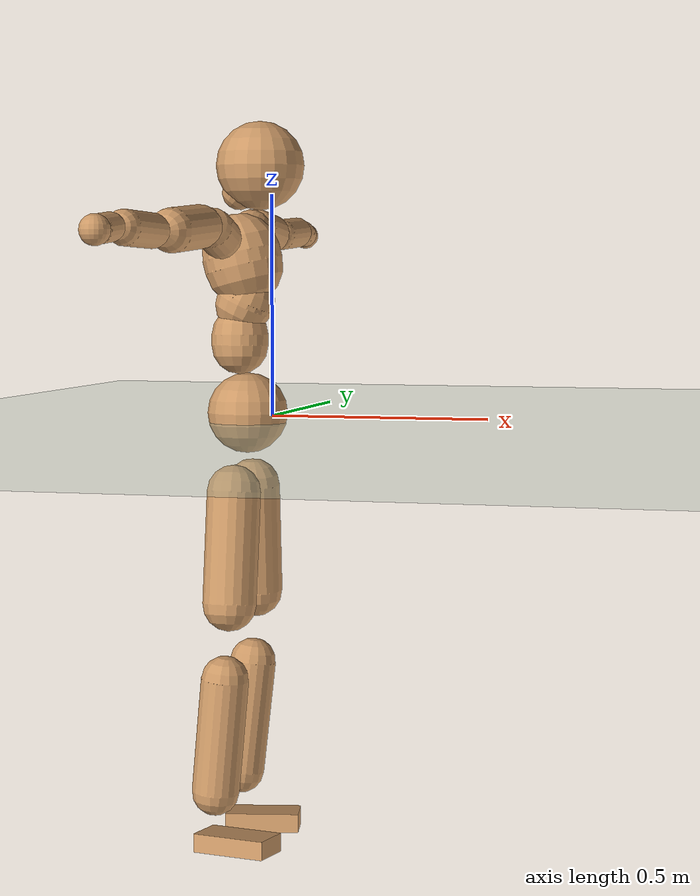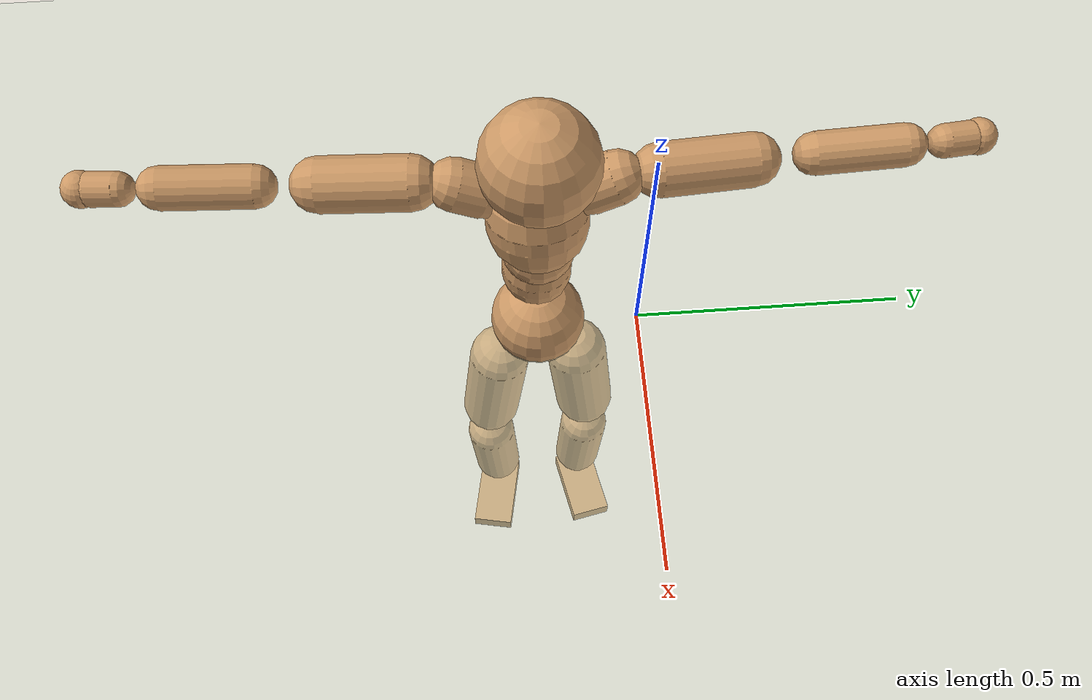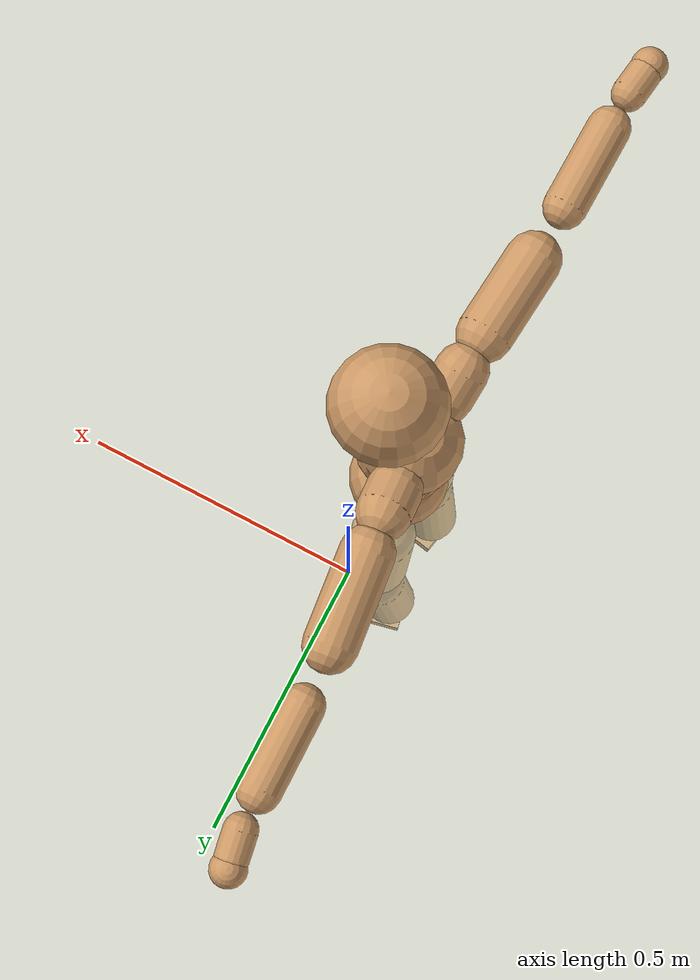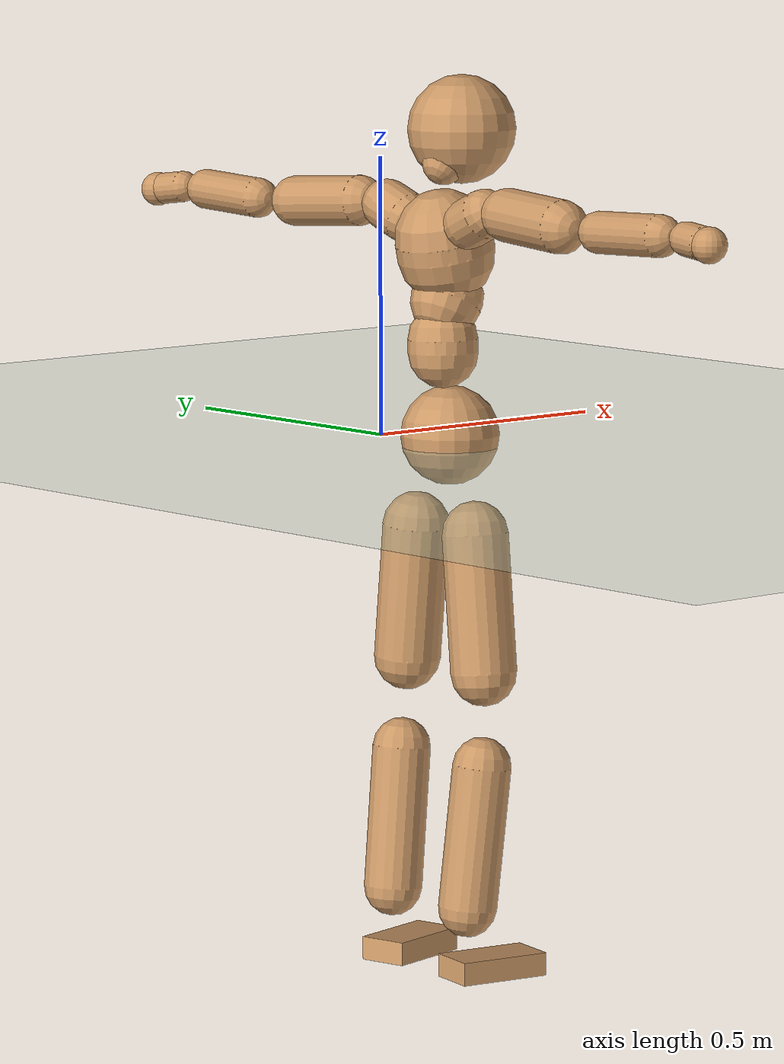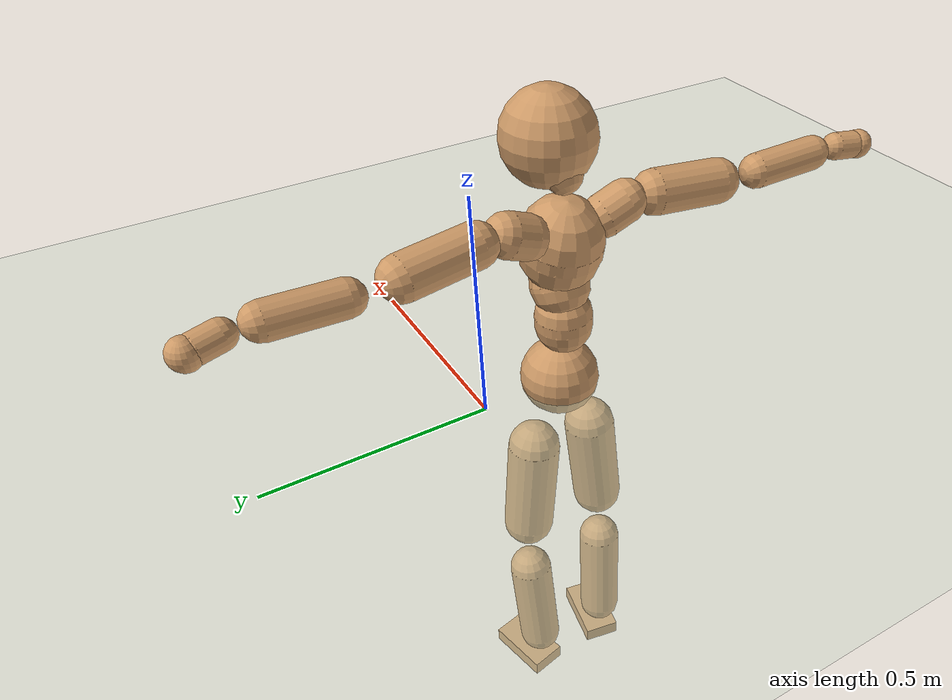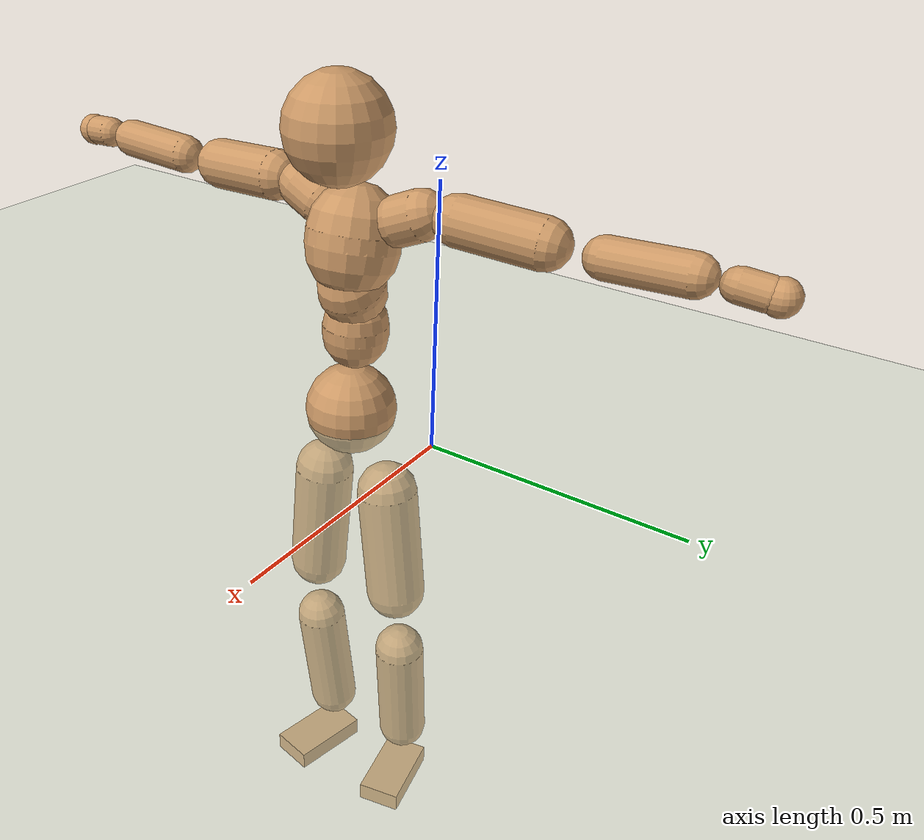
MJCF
<mujoco model="humanoid">
  <compiler coordinate="local" angle="radian"/>
  <default>
    <joint damping="0.0" armature="0.01" stiffness="0.0" limited="true"/>
    <geom conaffinity="1" condim="3" contype="7" margin="0.001" rgba="0.8 0.6 .4 1"/>
  </default>
  <asset>
    <texture type="skybox" builtin="gradient" rgb1=".4 .5 .6" rgb2="0 0 0" width="100" height="100"/>
    <texture builtin="flat" height="1278" mark="cross" markrgb="1 1 1" name="texgeom" random="0.01" rgb1="0.8 0.6 0.4" rgb2="0.8 0.6 0.4" type="cube" width="127"/>
    <texture builtin="checker" height="100" name="texplane" rgb1="0 0 0" rgb2="0.8 0.8 0.8" type="2d" width="100"/>
    <material name="MatPlane" reflectance="0.5" shininess="1" specular="1" texrepeat="60 60" texture="texplane"/>
    <material name="geom" texture="texgeom" texuniform="true"/>
  </asset>
  <worldbody>
    <light cutoff="100" diffuse="1 1 1" dir="-0 0 -1.3" directional="true" exponent="1" pos="0 0 1.3" specular=".1 .1 .1"/>
    <geom conaffinity="1" condim="3" name="floor" pos="0 0 0" rgba="0.8 0.9 0.8 1" size="100 100 .2" type="plane" material="MatPlane"/>
    <body name="Pelvis" pos="-0.001 -0.1881 0.0194">
      <freejoint name="Pelvis"/>
      <geom type="sphere" contype="1" conaffinity="1" density="500" size="0.0882" pos="0.0000 0.0000 0.0000" name="Pelvis"/>
      <body name="L_Hip" pos="-0.0118 0.0697 -0.088">
        <joint name="L_Hip_x" type="hinge" pos="0 0 0" axis="1 0 0" stiffness="800" damping="80" armature="0.02" range="-180.0000 180.0000"/>
        <joint name="L_Hip_y" type="hinge" pos="0 0 0" axis="0 1 0" stiffness="800" damping="80" armature="0.02" range="-180.0000 180.0000"/>
        <joint name="L_Hip_z" type="hinge" pos="0 0 0" axis="0 0 1" stiffness="800" damping="80" armature="0.02" range="-180.0000 180.0000"/>
        <geom type="capsule" contype="1" conaffinity="1" density="500" fromto="-0.0003 0.0076 -0.0800 -0.0013 0.0305 -0.3200" size="0.0599" name="L_Hip"/>
        <body name="L_Knee" pos="-0.0016 0.0381 -0.4">
          <joint name="L_Knee_x" type="hinge" pos="0 0 0" axis="1 0 0" stiffness="800" damping="80" armature="0.02" range="-180.0000 180.0000"/>
          <joint name="L_Knee_y" type="hinge" pos="0 0 0" axis="0 1 0" stiffness="800" damping="80" armature="0.02" range="-180.0000 180.0000"/>
          <joint name="L_Knee_z" type="hinge" pos="0 0 0" axis="0 0 1" stiffness="800" damping="80" armature="0.02" range="-180.0000 180.0000"/>
          <geom type="capsule" contype="1" conaffinity="1" density="500" fromto="-0.0089 -0.0024 -0.0841 -0.0355 -0.0094 -0.3366" size="0.052" name="L_Knee"/>
          <body name="L_Ankle" pos="-0.0444 -0.0118 -0.4207">
            <joint name="L_Ankle_x" type="hinge" pos="0 0 0" axis="1 0 0" stiffness="800" damping="80" armature="0.02" range="-180.0000 180.0000"/>
            <joint name="L_Ankle_y" type="hinge" pos="0 0 0" axis="0 1 0" stiffness="800" damping="80" armature="0.02" range="-180.0000 180.0000"/>
            <joint name="L_Ankle_z" type="hinge" pos="0 0 0" axis="0 0 1" stiffness="800" damping="80" armature="0.02" range="-180.0000 180.0000"/>
            <geom type="box" contype="1" conaffinity="1" density="500" pos="0.0586 0.0123 -0.0293" size="0.0826 0.0446 0.0209" quat="0.9946 0.0000 0.0000 0.1037" name="L_Ankle"/>
            <body name="L_Toe" pos="0.1172 0.0247 -0.0587">
              <joint name="L_Toe_x" type="hinge" pos="0 0 0" axis="1 0 0" stiffness="500" damping="50" armature="0.02" range="-180.0000 180.0000"/>
              <joint name="L_Toe_y" type="hinge" pos="0 0 0" axis="0 1 0" stiffness="500" damping="50" armature="0.02" range="-180.0000 180.0000"/>
              <joint name="L_Toe_z" type="hinge" pos="0 0 0" axis="0 0 1" stiffness="500" damping="50" armature="0.02" range="-180.0000 180.0000"/>
              <geom type="box" contype="1" conaffinity="1" density="500" pos="0.0000 0.0000 0.0293" size="0.0009 0.0022 0.001" quat="0.9939 0.0000 0.0000 0.1099" name="L_Toe"/>
            </body>
          </body>
        </body>
      </body>
      <body name="R_Hip" pos="-0.0076 -0.0678 -0.0867">
        <joint name="R_Hip_x" type="hinge" pos="0 0 0" axis="1 0 0" stiffness="800" damping="80" armature="0.02" range="-180.0000 180.0000"/>
        <joint name="R_Hip_y" type="hinge" pos="0 0 0" axis="0 1 0" stiffness="800" damping="80" armature="0.02" range="-180.0000 180.0000"/>
        <joint name="R_Hip_z" type="hinge" pos="0 0 0" axis="0 0 1" stiffness="800" damping="80" armature="0.02" range="-180.0000 180.0000"/>
        <geom type="capsule" contype="1" conaffinity="1" density="500" fromto="-0.0009 -0.0088 -0.0814 -0.0035 -0.0353 -0.3255" size="0.0591" name="R_Hip"/>
        <body name="R_Knee" pos="-0.0044 -0.0441 -0.4069">
          <joint name="R_Knee_x" type="hinge" pos="0 0 0" axis="1 0 0" stiffness="800" damping="80" armature="0.02" range="-180.0000 180.0000"/>
          <joint name="R_Knee_y" type="hinge" pos="0 0 0" axis="0 1 0" stiffness="800" damping="80" armature="0.02" range="-180.0000 180.0000"/>
          <joint name="R_Knee_z" type="hinge" pos="0 0 0" axis="0 0 1" stiffness="800" damping="80" armature="0.02" range="-180.0000 180.0000"/>
          <geom type="capsule" contype="1" conaffinity="1" density="500" fromto="-0.0084 0.0030 -0.0843 -0.0338 0.0121 -0.3372" size="0.0522" name="R_Knee"/>
          <body name="R_Ankle" pos="-0.0422 0.0152 -0.4215">
            <joint name="R_Ankle_x" type="hinge" pos="0 0 0" axis="1 0 0" stiffness="800" damping="80" armature="0.02" range="-180.0000 180.0000"/>
            <joint name="R_Ankle_y" type="hinge" pos="0 0 0" axis="0 1 0" stiffness="800" damping="80" armature="0.02" range="-180.0000 180.0000"/>
            <joint name="R_Ankle_z" type="hinge" pos="0 0 0" axis="0 0 1" stiffness="800" damping="80" armature="0.02" range="-180.0000 180.0000"/>
            <geom type="box" contype="1" conaffinity="1" density="500" pos="0.0603 -0.0116 -0.0250" size="0.0845 0.0455 0.0206" quat="0.9955 0.0000 0.0000 -0.0947" name="R_Ankle"/>
            <body name="R_Toe" pos="0.1206 -0.0232 -0.0501">
              <joint name="R_Toe_x" type="hinge" pos="0 0 0" axis="1 0 0" stiffness="500" damping="50" armature="0.02" range="-180.0000 180.0000"/>
              <joint name="R_Toe_y" type="hinge" pos="0 0 0" axis="0 1 0" stiffness="500" damping="50" armature="0.02" range="-180.0000 180.0000"/>
              <joint name="R_Toe_z" type="hinge" pos="0 0 0" axis="0 0 1" stiffness="500" damping="50" armature="0.02" range="-180.0000 180.0000"/>
              <geom type="box" contype="1" conaffinity="1" density="500" pos="0.0000 0.0000 0.0268" size="0.0008 0.0022 0.0011" quat="0.9964 0.0000 0.0000 -0.0853" name="R_Toe"/>
            </body>
          </body>
        </body>
      </body>
      <body name="Torso" pos="-0.017 -0.002 0.0999">
        <joint name="Torso_x" type="hinge" pos="0 0 0" axis="1 0 0" stiffness="1000" damping="100" armature="0.02" range="-180.0000 180.0000"/>
        <joint name="Torso_y" type="hinge" pos="0 0 0" axis="0 1 0" stiffness="1000" damping="100" armature="0.02" range="-180.0000 180.0000"/>
        <joint name="Torso_z" type="hinge" pos="0 0 0" axis="0 0 1" stiffness="1000" damping="100" armature="0.02" range="-180.0000 180.0000"/>
        <geom type="capsule" contype="1" conaffinity="1" density="500" fromto="-0.0001 0.0019 0.0713 -0.0001 0.0013 0.0475" size="0.0624" name="Torso"/>
        <body name="Spine" pos="-0.0002 0.0032 0.1189">
          <joint name="Spine_x" type="hinge" pos="0 0 0" axis="1 0 0" stiffness="1000" damping="100" armature="0.02" range="-180.0000 180.0000"/>
          <joint name="Spine_y" type="hinge" pos="0 0 0" axis="0 1 0" stiffness="1000" damping="100" armature="0.02" range="-180.0000 180.0000"/>
          <joint name="Spine_z" type="hinge" pos="0 0 0" axis="0 0 1" stiffness="1000" damping="100" armature="0.02" range="-180.0000 180.0000"/>
          <geom type="capsule" contype="1" conaffinity="1" density="500" fromto="0.0138 0.0007 0.0281 0.0092 0.0005 0.0187" size="0.0639" name="Spine"/>
          <body name="Chest" pos="0.023 0.0012 0.0469">
            <joint name="Chest_x" type="hinge" pos="0 0 0" axis="1 0 0" stiffness="1000" damping="100" armature="0.02" range="-180.0000 180.0000"/>
            <joint name="Chest_y" type="hinge" pos="0 0 0" axis="0 1 0" stiffness="1000" damping="100" armature="0.02" range="-180.0000 180.0000"/>
            <joint name="Chest_z" type="hinge" pos="0 0 0" axis="0 0 1" stiffness="1000" damping="100" armature="0.02" range="-180.0000 180.0000"/>
            <geom type="capsule" contype="1" conaffinity="1" density="500" fromto="-0.0206 -0.0016 0.0841 -0.0137 -0.0011 0.0561" size="0.0871" name="Chest"/>
            <body name="Neck" pos="-0.0331 -0.0051 0.202">
              <joint name="Neck_x" type="hinge" pos="0 0 0" axis="1 0 0" stiffness="500" damping="50" armature="0.02" range="-180.0000 180.0000"/>
              <joint name="Neck_y" type="hinge" pos="0 0 0" axis="0 1 0" stiffness="500" damping="50" armature="0.02" range="-180.0000 180.0000"/>
              <joint name="Neck_z" type="hinge" pos="0 0 0" axis="0 0 1" stiffness="500" damping="50" armature="0.02" range="-180.0000 180.0000"/>
              <geom type="capsule" contype="1" conaffinity="1" density="500" fromto="0.0113 0.0011 0.0143 0.0453 0.0043 0.0571" size="0.0389" name="Neck"/>
              <body name="Head" pos="0.0566 0.0054 0.0713">
                <joint name="Head_x" type="hinge" pos="0 0 0" axis="1 0 0" stiffness="500" damping="50" armature="0.02" range="-180.0000 180.0000"/>
                <joint name="Head_y" type="hinge" pos="0 0 0" axis="0 1 0" stiffness="500" damping="50" armature="0.02" range="-180.0000 180.0000"/>
                <joint name="Head_z" type="hinge" pos="0 0 0" axis="0 0 1" stiffness="500" damping="50" armature="0.02" range="-180.0000 180.0000"/>
                <geom type="sphere" contype="1" conaffinity="1" density="500" size="0.0963" pos="0.0000 0.0000 0.0000" name="Head"/>
              </body>
            </body>
            <body name="L_Thorax" pos="-0.0329 0.0679 0.1096">
              <joint name="L_Thorax_x" type="hinge" pos="0 0 0" axis="1 0 0" stiffness="500" damping="50" armature="0.02" range="-180.0000 180.0000"/>
              <joint name="L_Thorax_y" type="hinge" pos="0 0 0" axis="0 1 0" stiffness="500" damping="50" armature="0.02" range="-180.0000 180.0000"/>
              <joint name="L_Thorax_z" type="hinge" pos="0 0 0" axis="0 0 1" stiffness="500" damping="50" armature="0.02" range="-180.0000 180.0000"/>
              <geom type="capsule" contype="1" conaffinity="1" density="500" fromto="-0.0012 0.0154 0.0064 -0.0047 0.0615 0.0257" size="0.0458" name="L_Thorax"/>
              <body name="L_Shoulder" pos="-0.0059 0.0769 0.0322">
                <joint name="L_Shoulder_x" type="hinge" pos="0 0 0" axis="1 0 0" stiffness="500" damping="50" armature="0.02" range="-720.0000 720.0000"/>
                <joint name="L_Shoulder_y" type="hinge" pos="0 0 0" axis="0 1 0" stiffness="500" damping="50" armature="0.02" range="-720.0000 720.0000"/>
                <joint name="L_Shoulder_z" type="hinge" pos="0 0 0" axis="0 0 1" stiffness="500" damping="50" armature="0.02" range="-720.0000 720.0000"/>
                <geom type="capsule" contype="1" conaffinity="1" density="500" fromto="-0.0053 0.0523 -0.0034 -0.0213 0.2090 -0.0135" size="0.0454" name="L_Shoulder"/>
                <body name="L_Elbow" pos="-0.0266 0.2613 -0.0168">
                  <joint name="L_Elbow_x" type="hinge" pos="0 0 0" axis="1 0 0" stiffness="500" damping="50" armature="0.02" range="-720.0000 720.0000"/>
                  <joint name="L_Elbow_y" type="hinge" pos="0 0 0" axis="0 1 0" stiffness="500" damping="50" armature="0.02" range="-720.0000 720.0000"/>
                  <joint name="L_Elbow_z" type="hinge" pos="0 0 0" axis="0 0 1" stiffness="500" damping="50" armature="0.02" range="-720.0000 720.0000"/>
                  <geom type="capsule" contype="1" conaffinity="1" density="500" fromto="-0.0004 0.0493 0.0022 -0.0017 0.1973 0.0088" size="0.0362" name="L_Elbow"/>
                  <body name="L_Wrist" pos="-0.0021 0.2467 0.011">
                    <joint name="L_Wrist_x" type="hinge" pos="0 0 0" axis="1 0 0" stiffness="300" damping="30" armature="0.02" range="-180.0000 180.0000"/>
                    <joint name="L_Wrist_y" type="hinge" pos="0 0 0" axis="0 1 0" stiffness="300" damping="30" armature="0.02" range="-180.0000 180.0000"/>
                    <joint name="L_Wrist_z" type="hinge" pos="0 0 0" axis="0 0 1" stiffness="300" damping="30" armature="0.02" range="-180.0000 180.0000"/>
                    <geom type="capsule" contype="1" conaffinity="1" density="500" fromto="-0.0026 0.0154 -0.0019 -0.0104 0.0614 -0.0077" size="0.0286" name="L_Wrist"/>
                    <body name="L_Hand" pos="-0.0131 0.0768 -0.0097">
                      <joint name="L_Hand_x" type="hinge" pos="0 0 0" axis="1 0 0" stiffness="300" damping="30" armature="0.02" range="-180.0000 180.0000"/>
                      <joint name="L_Hand_y" type="hinge" pos="0 0 0" axis="0 1 0" stiffness="300" damping="30" armature="0.02" range="-180.0000 180.0000"/>
                      <joint name="L_Hand_z" type="hinge" pos="0 0 0" axis="0 0 1" stiffness="300" damping="30" armature="0.02" range="-180.0000 180.0000"/>
                      <geom type="sphere" contype="1" conaffinity="1" density="500" size="0.0309" pos="0.0000 0.0000 0.0000" name="L_Hand"/>
                    </body>
                  </body>
                </body>
              </body>
            </body>
            <body name="R_Thorax" pos="-0.0369 -0.0708 0.1089">
              <joint name="R_Thorax_x" type="hinge" pos="0 0 0" axis="1 0 0" stiffness="500" damping="50" armature="0.02" range="-180.0000 180.0000"/>
              <joint name="R_Thorax_y" type="hinge" pos="0 0 0" axis="0 1 0" stiffness="500" damping="50" armature="0.02" range="-180.0000 180.0000"/>
              <joint name="R_Thorax_z" type="hinge" pos="0 0 0" axis="0 0 1" stiffness="500" damping="50" armature="0.02" range="-180.0000 180.0000"/>
              <geom type="capsule" contype="1" conaffinity="1" density="500" fromto="-0.0013 -0.0157 0.0068 -0.0053 -0.0630 0.0270" size="0.0446" name="R_Thorax"/>
              <body name="R_Shoulder" pos="-0.0066 -0.0787 0.0338">
                <joint name="R_Shoulder_x" type="hinge" pos="0 0 0" axis="1 0 0" stiffness="500" damping="50" armature="0.02" range="-720.0000 720.0000"/>
                <joint name="R_Shoulder_y" type="hinge" pos="0 0 0" axis="0 1 0" stiffness="500" damping="50" armature="0.02" range="-720.0000 720.0000"/>
                <joint name="R_Shoulder_z" type="hinge" pos="0 0 0" axis="0 0 1" stiffness="500" damping="50" armature="0.02" range="-720.0000 720.0000"/>
                <geom type="capsule" contype="1" conaffinity="1" density="500" fromto="-0.0043 -0.0503 -0.0032 -0.0171 -0.2010 -0.0126" size="0.0468" name="R_Shoulder"/>
                <body name="R_Elbow" pos="-0.0214 -0.2513 -0.0158">
                  <joint name="R_Elbow_x" type="hinge" pos="0 0 0" axis="1 0 0" stiffness="500" damping="50" armature="0.02" range="-720.0000 720.0000"/>
                  <joint name="R_Elbow_y" type="hinge" pos="0 0 0" axis="0 1 0" stiffness="500" damping="50" armature="0.02" range="-720.0000 720.0000"/>
                  <joint name="R_Elbow_z" type="hinge" pos="0 0 0" axis="0 0 1" stiffness="500" damping="50" armature="0.02" range="-720.0000 720.0000"/>
                  <geom type="capsule" contype="1" conaffinity="1" density="500" fromto="-0.0013 -0.0508 0.0017 -0.0052 -0.2031 0.0066" size="0.0365" name="R_Elbow"/>
                  <body name="R_Wrist" pos="-0.0064 -0.2539 0.0083">
                    <joint name="R_Wrist_x" type="hinge" pos="0 0 0" axis="1 0 0" stiffness="300" damping="30" armature="0.02" range="-180.0000 180.0000"/>
                    <joint name="R_Wrist_y" type="hinge" pos="0 0 0" axis="0 1 0" stiffness="300" damping="30" armature="0.02" range="-180.0000 180.0000"/>
                    <joint name="R_Wrist_z" type="hinge" pos="0 0 0" axis="0 0 1" stiffness="300" damping="30" armature="0.02" range="-180.0000 180.0000"/>
                    <geom type="capsule" contype="1" conaffinity="1" density="500" fromto="-0.0020 -0.0154 -0.0014 -0.0080 -0.0618 -0.0057" size="0.0294" name="R_Wrist"/>
                    <body name="R_Hand" pos="-0.01 -0.0772 -0.0072">
                      <joint name="R_Hand_x" type="hinge" pos="0 0 0" axis="1 0 0" stiffness="300" damping="30" armature="0.02" range="-180.0000 180.0000"/>
                      <joint name="R_Hand_y" type="hinge" pos="0 0 0" axis="0 1 0" stiffness="300" damping="30" armature="0.02" range="-180.0000 180.0000"/>
                      <joint name="R_Hand_z" type="hinge" pos="0 0 0" axis="0 0 1" stiffness="300" damping="30" armature="0.02" range="-180.0000 180.0000"/>
                      <geom type="sphere" contype="1" conaffinity="1" density="500" size="0.0310" pos="0.0000 0.0000 0.0000" name="R_Hand"/>
                    </body>
                  </body>
                </body>
              </body>
            </body>
          </body>
        </body>
      </body>
    </body>
  </worldbody>
  <actuator>
    <motor name="L_Hip_x" joint="L_Hip_x" gear="500"/>
    <motor name="L_Hip_y" joint="L_Hip_y" gear="500"/>
    <motor name="L_Hip_z" joint="L_Hip_z" gear="500"/>
    <motor name="L_Knee_x" joint="L_Knee_x" gear="500"/>
    <motor name="L_Knee_y" joint="L_Knee_y" gear="500"/>
    <motor name="L_Knee_z" joint="L_Knee_z" gear="500"/>
    <motor name="L_Ankle_x" joint="L_Ankle_x" gear="500"/>
    <motor name="L_Ankle_y" joint="L_Ankle_y" gear="500"/>
    <motor name="L_Ankle_z" joint="L_Ankle_z" gear="500"/>
    <motor name="L_Toe_x" joint="L_Toe_x" gear="500"/>
    <motor name="L_Toe_y" joint="L_Toe_y" gear="500"/>
    <motor name="L_Toe_z" joint="L_Toe_z" gear="500"/>
    <motor name="R_Hip_x" joint="R_Hip_x" gear="500"/>
    <motor name="R_Hip_y" joint="R_Hip_y" gear="500"/>
    <motor name="R_Hip_z" joint="R_Hip_z" gear="500"/>
    <motor name="R_Knee_x" joint="R_Knee_x" gear="500"/>
    <motor name="R_Knee_y" joint="R_Knee_y" gear="500"/>
    <motor name="R_Knee_z" joint="R_Knee_z" gear="500"/>
    <motor name="R_Ankle_x" joint="R_Ankle_x" gear="500"/>
    <motor name="R_Ankle_y" joint="R_Ankle_y" gear="500"/>
    <motor name="R_Ankle_z" joint="R_Ankle_z" gear="500"/>
    <motor name="R_Toe_x" joint="R_Toe_x" gear="500"/>
    <motor name="R_Toe_y" joint="R_Toe_y" gear="500"/>
    <motor name="R_Toe_z" joint="R_Toe_z" gear="500"/>
    <motor name="Torso_x" joint="Torso_x" gear="500"/>
    <motor name="Torso_y" joint="Torso_y" gear="500"/>
    <motor name="Torso_z" joint="Torso_z" gear="500"/>
    <motor name="Spine_x" joint="Spine_x" gear="500"/>
    <motor name="Spine_y" joint="Spine_y" gear="500"/>
    <motor name="Spine_z" joint="Spine_z" gear="500"/>
    <motor name="Chest_x" joint="Chest_x" gear="500"/>
    <motor name="Chest_y" joint="Chest_y" gear="500"/>
    <motor name="Chest_z" joint="Chest_z" gear="500"/>
    <motor name="Neck_x" joint="Neck_x" gear="500"/>
    <motor name="Neck_y" joint="Neck_y" gear="500"/>
    <motor name="Neck_z" joint="Neck_z" gear="500"/>
    <motor name="Head_x" joint="Head_x" gear="500"/>
    <motor name="Head_y" joint="Head_y" gear="500"/>
    <motor name="Head_z" joint="Head_z" gear="500"/>
    <motor name="L_Thorax_x" joint="L_Thorax_x" gear="500"/>
    <motor name="L_Thorax_y" joint="L_Thorax_y" gear="500"/>
    <motor name="L_Thorax_z" joint="L_Thorax_z" gear="500"/>
    <motor name="L_Shoulder_x" joint="L_Shoulder_x" gear="500"/>
    <motor name="L_Shoulder_y" joint="L_Shoulder_y" gear="500"/>
    <motor name="L_Shoulder_z" joint="L_Shoulder_z" gear="500"/>
    <motor name="L_Elbow_x" joint="L_Elbow_x" gear="500"/>
    <motor name="L_Elbow_y" joint="L_Elbow_y" gear="500"/>
    <motor name="L_Elbow_z" joint="L_Elbow_z" gear="500"/>
    <motor name="L_Wrist_x" joint="L_Wrist_x" gear="500"/>
    <motor name="L_Wrist_y" joint="L_Wrist_y" gear="500"/>
    <motor name="L_Wrist_z" joint="L_Wrist_z" gear="500"/>
    <motor name="L_Hand_x" joint="L_Hand_x" gear="500"/>
    <motor name="L_Hand_y" joint="L_Hand_y" gear="500"/>
    <motor name="L_Hand_z" joint="L_Hand_z" gear="500"/>
    <motor name="R_Thorax_x" joint="R_Thorax_x" gear="500"/>
    <motor name="R_Thorax_y" joint="R_Thorax_y" gear="500"/>
    <motor name="R_Thorax_z" joint="R_Thorax_z" gear="500"/>
    <motor name="R_Shoulder_x" joint="R_Shoulder_x" gear="500"/>
    <motor name="R_Shoulder_y" joint="R_Shoulder_y" gear="500"/>
    <motor name="R_Shoulder_z" joint="R_Shoulder_z" gear="500"/>
    <motor name="R_Elbow_x" joint="R_Elbow_x" gear="500"/>
    <motor name="R_Elbow_y" joint="R_Elbow_y" gear="500"/>
    <motor name="R_Elbow_z" joint="R_Elbow_z" gear="500"/>
    <motor name="R_Wrist_x" joint="R_Wrist_x" gear="500"/>
    <motor name="R_Wrist_y" joint="R_Wrist_y" gear="500"/>
    <motor name="R_Wrist_z" joint="R_Wrist_z" gear="500"/>
    <motor name="R_Hand_x" joint="R_Hand_x" gear="500"/>
    <motor name="R_Hand_y" joint="R_Hand_y" gear="500"/>
    <motor name="R_Hand_z" joint="R_Hand_z" gear="500"/>
  </actuator>
  <contact>
    <exclude body1="Torso" body2="Chest"/>
    <exclude body1="Head" body2="Chest"/>
    <exclude body1="R_Knee" body2="R_Toe"/>
    <exclude body1="R_Knee" body2="L_Ankle"/>
    <exclude body1="R_Knee" body2="L_Toe"/>
    <exclude body1="L_Knee" body2="L_Toe"/>
    <exclude body1="L_Knee" body2="R_Ankle"/>
    <exclude body1="L_Knee" body2="R_Toe"/>
    <exclude body1="L_Shoulder" body2="Chest"/>
    <exclude body1="R_Shoulder" body2="Chest"/>
  </contact>
  <sensor/>
  <size njmax="700" nconmax="700"/>
</mujoco>
